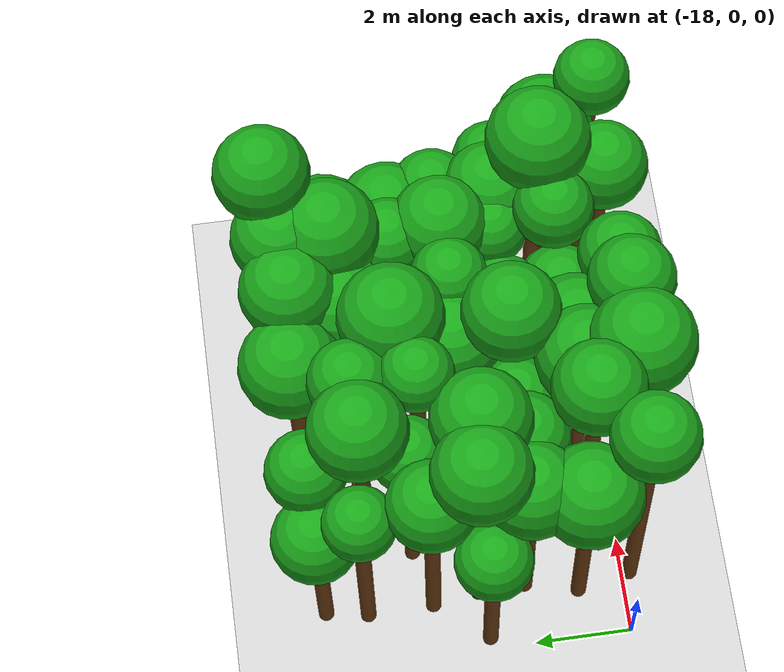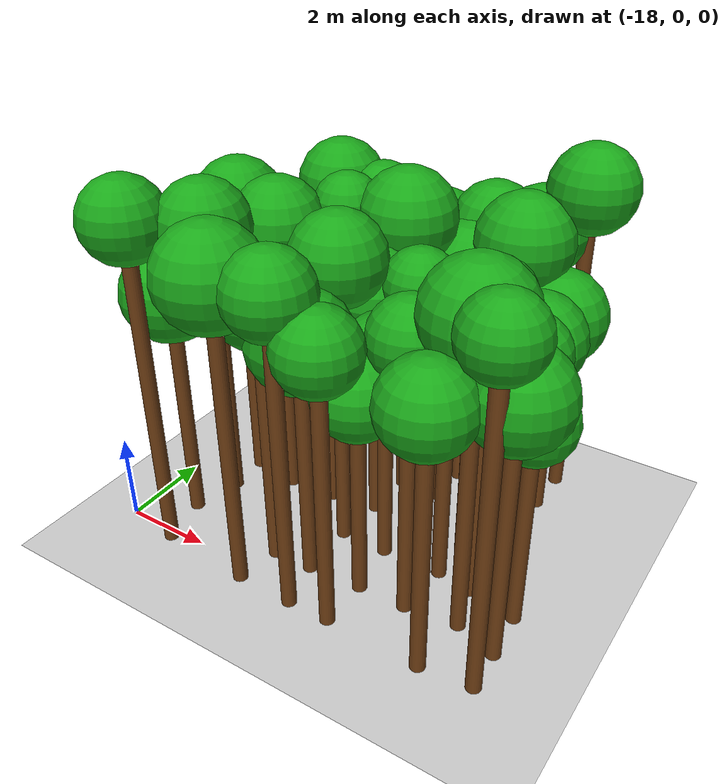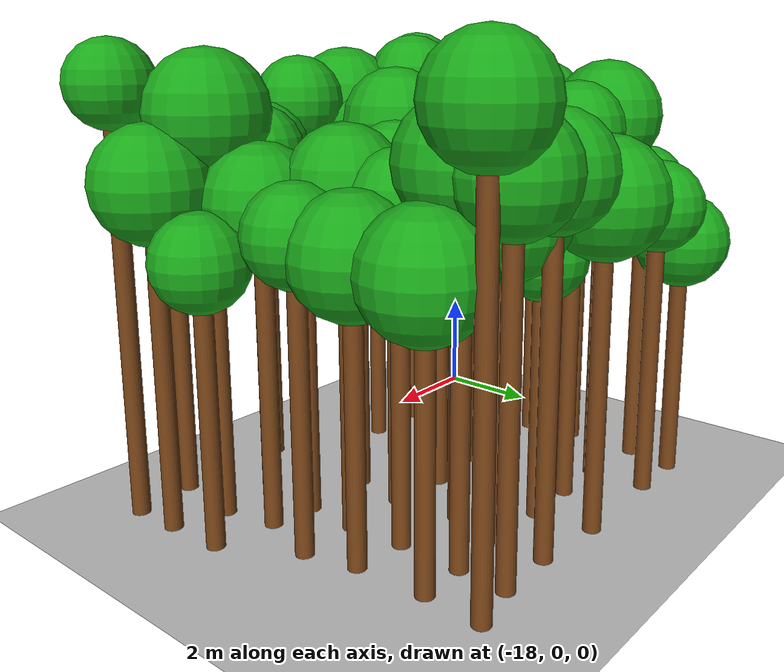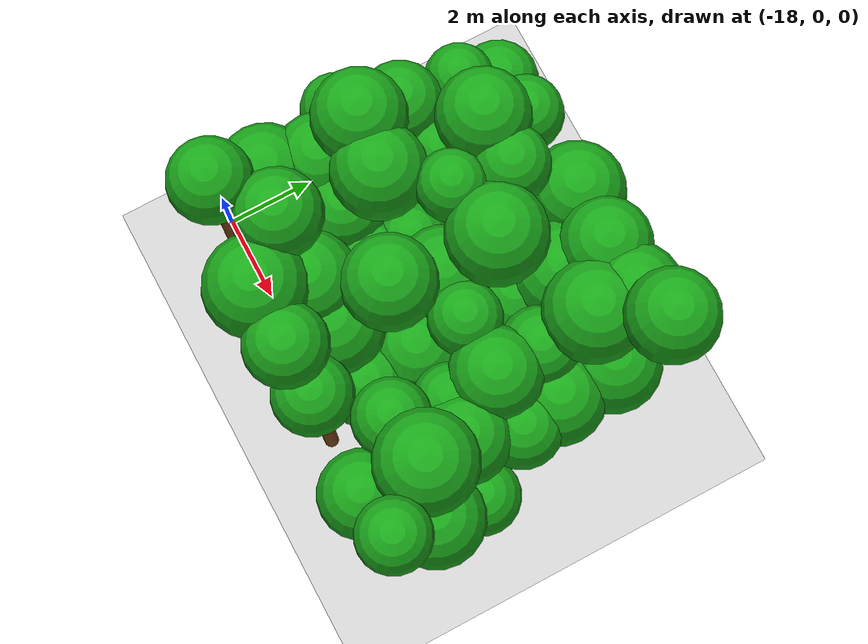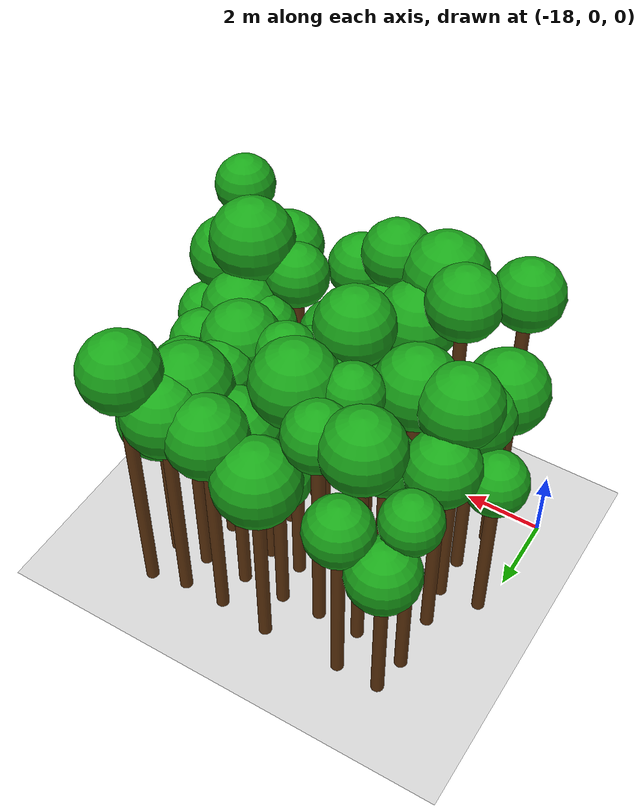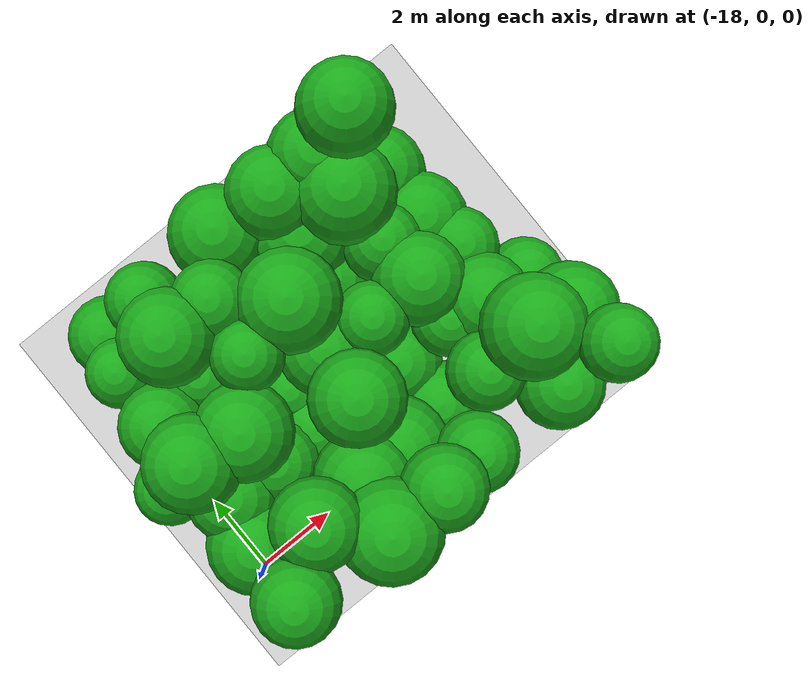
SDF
<sdf version="1.6">
 <world name="forest_world">
  <include><uri>model://sun</uri></include>
  <include><uri>model://ground_plane</uri></include>
  <model name="tree_635_trunk">
   <static>true</static>
   <pose>-17.75 2.90 2.15 0 0 0</pose>
   <link name="link">
    <collision name="collision">
     <geometry><cylinder><radius>0.16</radius><length>4.30</length></cylinder></geometry>
    </collision>
    <visual name="visual">
     <geometry><cylinder><radius>0.16</radius><length>4.30</length></cylinder></geometry>
     <material><ambient>0.35 0.20 0.05 1</ambient><diffuse>0.45 0.25 0.08 1</diffuse></material>
    </visual>
   </link>
  </model>
  <model name="tree_635_leaf">
   <static>true</static>
   <pose>-17.75 2.90 4.77 0 0 0</pose>
   <link name="link">
    <collision name="collision"><geometry><sphere><radius>0.77</radius></sphere></geometry></collision>
    <visual name="visual">
     <geometry><sphere><radius>0.77</radius></sphere></geometry>
     <material><ambient>0.05 0.45 0.05 1</ambient><diffuse>0.10 0.65 0.10 1</diffuse></material>
    </visual>
   </link>
  </model>
  <model name="tree_687_trunk">
   <static>true</static>
   <pose>-16.74 -0.16 3.50 0 0 0</pose>
   <link name="link">
    <collision name="collision">
     <geometry><cylinder><radius>0.16</radius><length>7.00</length></cylinder></geometry>
    </collision>
    <visual name="visual">
     <geometry><cylinder><radius>0.16</radius><length>7.00</length></cylinder></geometry>
     <material><ambient>0.35 0.20 0.05 1</ambient><diffuse>0.45 0.25 0.08 1</diffuse></material>
    </visual>
   </link>
  </model>
  <model name="tree_687_leaf">
   <static>true</static>
   <pose>-16.74 -0.16 7.51 0 0 0</pose>
   <link name="link">
    <collision name="collision"><geometry><sphere><radius>0.86</radius></sphere></geometry></collision>
    <visual name="visual">
     <geometry><sphere><radius>0.86</radius></sphere></geometry>
     <material><ambient>0.05 0.45 0.05 1</ambient><diffuse>0.10 0.65 0.10 1</diffuse></material>
    </visual>
   </link>
  </model>
  <model name="tree_688_trunk">
   <static>true</static>
   <pose>-16.97 0.95 2.45 0 0 0</pose>
   <link name="link">
    <collision name="collision">
     <geometry><cylinder><radius>0.16</radius><length>4.90</length></cylinder></geometry>
    </collision>
    <visual name="visual">
     <geometry><cylinder><radius>0.16</radius><length>4.90</length></cylinder></geometry>
     <material><ambient>0.35 0.20 0.05 1</ambient><diffuse>0.45 0.25 0.08 1</diffuse></material>
    </visual>
   </link>
  </model>
  <model name="tree_688_leaf">
   <static>true</static>
   <pose>-16.97 0.95 5.52 0 0 0</pose>
   <link name="link">
    <collision name="collision"><geometry><sphere><radius>1.03</radius></sphere></geometry></collision>
    <visual name="visual">
     <geometry><sphere><radius>1.03</radius></sphere></geometry>
     <material><ambient>0.05 0.45 0.05 1</ambient><diffuse>0.10 0.65 0.10 1</diffuse></material>
    </visual>
   </link>
  </model>
  <model name="tree_689_trunk">
   <static>true</static>
   <pose>-16.71 2.04 2.50 0 0 0</pose>
   <link name="link">
    <collision name="collision">
     <geometry><cylinder><radius>0.16</radius><length>4.99</length></cylinder></geometry>
    </collision>
    <visual name="visual">
     <geometry><cylinder><radius>0.16</radius><length>4.99</length></cylinder></geometry>
     <material><ambient>0.35 0.20 0.05 1</ambient><diffuse>0.45 0.25 0.08 1</diffuse></material>
    </visual>
   </link>
  </model>
  <model name="tree_689_leaf">
   <static>true</static>
   <pose>-16.71 2.04 5.57 0 0 0</pose>
   <link name="link">
    <collision name="collision"><geometry><sphere><radius>0.97</radius></sphere></geometry></collision>
    <visual name="visual">
     <geometry><sphere><radius>0.97</radius></sphere></geometry>
     <material><ambient>0.05 0.45 0.05 1</ambient><diffuse>0.10 0.65 0.10 1</diffuse></material>
    </visual>
   </link>
  </model>
  <model name="tree_690_trunk">
   <static>true</static>
   <pose>-16.75 3.01 3.12 0 0 0</pose>
   <link name="link">
    <collision name="collision">
     <geometry><cylinder><radius>0.16</radius><length>6.24</length></cylinder></geometry>
    </collision>
    <visual name="visual">
     <geometry><cylinder><radius>0.16</radius><length>6.24</length></cylinder></geometry>
     <material><ambient>0.35 0.20 0.05 1</ambient><diffuse>0.45 0.25 0.08 1</diffuse></material>
    </visual>
   </link>
  </model>
  <model name="tree_690_leaf">
   <static>true</static>
   <pose>-16.75 3.01 6.83 0 0 0</pose>
   <link name="link">
    <collision name="collision"><geometry><sphere><radius>0.98</radius></sphere></geometry></collision>
    <visual name="visual">
     <geometry><sphere><radius>0.98</radius></sphere></geometry>
     <material><ambient>0.05 0.45 0.05 1</ambient><diffuse>0.10 0.65 0.10 1</diffuse></material>
    </visual>
   </link>
  </model>
  <model name="tree_691_trunk">
   <static>true</static>
   <pose>-16.89 3.97 2.66 0 0 0</pose>
   <link name="link">
    <collision name="collision">
     <geometry><cylinder><radius>0.16</radius><length>5.31</length></cylinder></geometry>
    </collision>
    <visual name="visual">
     <geometry><cylinder><radius>0.16</radius><length>5.31</length></cylinder></geometry>
     <material><ambient>0.35 0.20 0.05 1</ambient><diffuse>0.45 0.25 0.08 1</diffuse></material>
    </visual>
   </link>
  </model>
  <model name="tree_691_leaf">
   <static>true</static>
   <pose>-16.89 3.97 5.85 0 0 0</pose>
   <link name="link">
    <collision name="collision"><geometry><sphere><radius>0.89</radius></sphere></geometry></collision>
    <visual name="visual">
     <geometry><sphere><radius>0.89</radius></sphere></geometry>
     <material><ambient>0.05 0.45 0.05 1</ambient><diffuse>0.10 0.65 0.10 1</diffuse></material>
    </visual>
   </link>
  </model>
  <model name="tree_692_trunk">
   <static>true</static>
   <pose>-16.92 5.33 2.53 0 0 0</pose>
   <link name="link">
    <collision name="collision">
     <geometry><cylinder><radius>0.16</radius><length>5.06</length></cylinder></geometry>
    </collision>
    <visual name="visual">
     <geometry><cylinder><radius>0.16</radius><length>5.06</length></cylinder></geometry>
     <material><ambient>0.35 0.20 0.05 1</ambient><diffuse>0.45 0.25 0.08 1</diffuse></material>
    </visual>
   </link>
  </model>
  <model name="tree_692_leaf">
   <static>true</static>
   <pose>-16.92 5.33 5.50 0 0 0</pose>
   <link name="link">
    <collision name="collision"><geometry><sphere><radius>0.73</radius></sphere></geometry></collision>
    <visual name="visual">
     <geometry><sphere><radius>0.73</radius></sphere></geometry>
     <material><ambient>0.05 0.45 0.05 1</ambient><diffuse>0.10 0.65 0.10 1</diffuse></material>
    </visual>
   </link>
  </model>
  <model name="tree_693_trunk">
   <static>true</static>
   <pose>-16.77 6.19 2.01 0 0 0</pose>
   <link name="link">
    <collision name="collision">
     <geometry><cylinder><radius>0.16</radius><length>4.02</length></cylinder></geometry>
    </collision>
    <visual name="visual">
     <geometry><cylinder><radius>0.16</radius><length>4.02</length></cylinder></geometry>
     <material><ambient>0.35 0.20 0.05 1</ambient><diffuse>0.45 0.25 0.08 1</diffuse></material>
    </visual>
   </link>
  </model>
  <model name="tree_693_leaf">
   <static>true</static>
   <pose>-16.77 6.19 4.54 0 0 0</pose>
   <link name="link">
    <collision name="collision"><geometry><sphere><radius>0.87</radius></sphere></geometry></collision>
    <visual name="visual">
     <geometry><sphere><radius>0.87</radius></sphere></geometry>
     <material><ambient>0.05 0.45 0.05 1</ambient><diffuse>0.10 0.65 0.10 1</diffuse></material>
    </visual>
   </link>
  </model>
  <model name="tree_743_trunk">
   <static>true</static>
   <pose>-15.59 0.68 3.42 0 0 0</pose>
   <link name="link">
    <collision name="collision">
     <geometry><cylinder><radius>0.16</radius><length>6.84</length></cylinder></geometry>
    </collision>
    <visual name="visual">
     <geometry><cylinder><radius>0.16</radius><length>6.84</length></cylinder></geometry>
     <material><ambient>0.35 0.20 0.05 1</ambient><diffuse>0.45 0.25 0.08 1</diffuse></material>
    </visual>
   </link>
  </model>
  <model name="tree_743_leaf">
   <static>true</static>
   <pose>-15.59 0.68 7.38 0 0 0</pose>
   <link name="link">
    <collision name="collision"><geometry><sphere><radius>0.91</radius></sphere></geometry></collision>
    <visual name="visual">
     <geometry><sphere><radius>0.91</radius></sphere></geometry>
     <material><ambient>0.05 0.45 0.05 1</ambient><diffuse>0.10 0.65 0.10 1</diffuse></material>
    </visual>
   </link>
  </model>
  <model name="tree_744_trunk">
   <static>true</static>
   <pose>-15.60 1.99 2.47 0 0 0</pose>
   <link name="link">
    <collision name="collision">
     <geometry><cylinder><radius>0.16</radius><length>4.93</length></cylinder></geometry>
    </collision>
    <visual name="visual">
     <geometry><cylinder><radius>0.16</radius><length>4.93</length></cylinder></geometry>
     <material><ambient>0.35 0.20 0.05 1</ambient><diffuse>0.45 0.25 0.08 1</diffuse></material>
    </visual>
   </link>
  </model>
  <model name="tree_744_leaf">
   <static>true</static>
   <pose>-15.60 1.99 5.46 0 0 0</pose>
   <link name="link">
    <collision name="collision"><geometry><sphere><radius>0.88</radius></sphere></geometry></collision>
    <visual name="visual">
     <geometry><sphere><radius>0.88</radius></sphere></geometry>
     <material><ambient>0.05 0.45 0.05 1</ambient><diffuse>0.10 0.65 0.10 1</diffuse></material>
    </visual>
   </link>
  </model>
  <model name="tree_745_trunk">
   <static>true</static>
   <pose>-15.63 2.86 3.04 0 0 0</pose>
   <link name="link">
    <collision name="collision">
     <geometry><cylinder><radius>0.16</radius><length>6.08</length></cylinder></geometry>
    </collision>
    <visual name="visual">
     <geometry><cylinder><radius>0.16</radius><length>6.08</length></cylinder></geometry>
     <material><ambient>0.35 0.20 0.05 1</ambient><diffuse>0.45 0.25 0.08 1</diffuse></material>
    </visual>
   </link>
  </model>
  <model name="tree_745_leaf">
   <static>true</static>
   <pose>-15.63 2.86 6.67 0 0 0</pose>
   <link name="link">
    <collision name="collision"><geometry><sphere><radius>0.99</radius></sphere></geometry></collision>
    <visual name="visual">
     <geometry><sphere><radius>0.99</radius></sphere></geometry>
     <material><ambient>0.05 0.45 0.05 1</ambient><diffuse>0.10 0.65 0.10 1</diffuse></material>
    </visual>
   </link>
  </model>
  <model name="tree_746_trunk">
   <static>true</static>
   <pose>-15.69 4.25 2.55 0 0 0</pose>
   <link name="link">
    <collision name="collision">
     <geometry><cylinder><radius>0.16</radius><length>5.10</length></cylinder></geometry>
    </collision>
    <visual name="visual">
     <geometry><cylinder><radius>0.16</radius><length>5.10</length></cylinder></geometry>
     <material><ambient>0.35 0.20 0.05 1</ambient><diffuse>0.45 0.25 0.08 1</diffuse></material>
    </visual>
   </link>
  </model>
  <model name="tree_746_leaf">
   <static>true</static>
   <pose>-15.69 4.25 5.55 0 0 0</pose>
   <link name="link">
    <collision name="collision"><geometry><sphere><radius>0.76</radius></sphere></geometry></collision>
    <visual name="visual">
     <geometry><sphere><radius>0.76</radius></sphere></geometry>
     <material><ambient>0.05 0.45 0.05 1</ambient><diffuse>0.10 0.65 0.10 1</diffuse></material>
    </visual>
   </link>
  </model>
  <model name="tree_747_trunk">
   <static>true</static>
   <pose>-15.61 5.16 3.13 0 0 0</pose>
   <link name="link">
    <collision name="collision">
     <geometry><cylinder><radius>0.16</radius><length>6.27</length></cylinder></geometry>
    </collision>
    <visual name="visual">
     <geometry><cylinder><radius>0.16</radius><length>6.27</length></cylinder></geometry>
     <material><ambient>0.35 0.20 0.05 1</ambient><diffuse>0.45 0.25 0.08 1</diffuse></material>
    </visual>
   </link>
  </model>
  <model name="tree_747_leaf">
   <static>true</static>
   <pose>-15.61 5.16 6.85 0 0 0</pose>
   <link name="link">
    <collision name="collision"><geometry><sphere><radius>0.97</radius></sphere></geometry></collision>
    <visual name="visual">
     <geometry><sphere><radius>0.97</radius></sphere></geometry>
     <material><ambient>0.05 0.45 0.05 1</ambient><diffuse>0.10 0.65 0.10 1</diffuse></material>
    </visual>
   </link>
  </model>
  <model name="tree_748_trunk">
   <static>true</static>
   <pose>-15.67 6.20 2.42 0 0 0</pose>
   <link name="link">
    <collision name="collision">
     <geometry><cylinder><radius>0.16</radius><length>4.84</length></cylinder></geometry>
    </collision>
    <visual name="visual">
     <geometry><cylinder><radius>0.16</radius><length>4.84</length></cylinder></geometry>
     <material><ambient>0.35 0.20 0.05 1</ambient><diffuse>0.45 0.25 0.08 1</diffuse></material>
    </visual>
   </link>
  </model>
  <model name="tree_748_leaf">
   <static>true</static>
   <pose>-15.67 6.20 5.32 0 0 0</pose>
   <link name="link">
    <collision name="collision"><geometry><sphere><radius>0.81</radius></sphere></geometry></collision>
    <visual name="visual">
     <geometry><sphere><radius>0.81</radius></sphere></geometry>
     <material><ambient>0.05 0.45 0.05 1</ambient><diffuse>0.10 0.65 0.10 1</diffuse></material>
    </visual>
   </link>
  </model>
  <model name="tree_797_trunk">
   <static>true</static>
   <pose>-14.62 -0.32 3.19 0 0 0</pose>
   <link name="link">
    <collision name="collision">
     <geometry><cylinder><radius>0.16</radius><length>6.37</length></cylinder></geometry>
    </collision>
    <visual name="visual">
     <geometry><cylinder><radius>0.16</radius><length>6.37</length></cylinder></geometry>
     <material><ambient>0.35 0.20 0.05 1</ambient><diffuse>0.45 0.25 0.08 1</diffuse></material>
    </visual>
   </link>
  </model>
  <model name="tree_797_leaf">
   <static>true</static>
   <pose>-14.62 -0.32 7.00 0 0 0</pose>
   <link name="link">
    <collision name="collision"><geometry><sphere><radius>1.05</radius></sphere></geometry></collision>
    <visual name="visual">
     <geometry><sphere><radius>1.05</radius></sphere></geometry>
     <material><ambient>0.05 0.45 0.05 1</ambient><diffuse>0.10 0.65 0.10 1</diffuse></material>
    </visual>
   </link>
  </model>
  <model name="tree_798_trunk">
   <static>true</static>
   <pose>-14.44 0.67 2.81 0 0 0</pose>
   <link name="link">
    <collision name="collision">
     <geometry><cylinder><radius>0.16</radius><length>5.62</length></cylinder></geometry>
    </collision>
    <visual name="visual">
     <geometry><cylinder><radius>0.16</radius><length>5.62</length></cylinder></geometry>
     <material><ambient>0.35 0.20 0.05 1</ambient><diffuse>0.45 0.25 0.08 1</diffuse></material>
    </visual>
   </link>
  </model>
  <model name="tree_798_leaf">
   <static>true</static>
   <pose>-14.44 0.67 6.23 0 0 0</pose>
   <link name="link">
    <collision name="collision"><geometry><sphere><radius>1.01</radius></sphere></geometry></collision>
    <visual name="visual">
     <geometry><sphere><radius>1.01</radius></sphere></geometry>
     <material><ambient>0.05 0.45 0.05 1</ambient><diffuse>0.10 0.65 0.10 1</diffuse></material>
    </visual>
   </link>
  </model>
  <model name="tree_799_trunk">
   <static>true</static>
   <pose>-14.59 2.01 2.21 0 0 0</pose>
   <link name="link">
    <collision name="collision">
     <geometry><cylinder><radius>0.16</radius><length>4.42</length></cylinder></geometry>
    </collision>
    <visual name="visual">
     <geometry><cylinder><radius>0.16</radius><length>4.42</length></cylinder></geometry>
     <material><ambient>0.35 0.20 0.05 1</ambient><diffuse>0.45 0.25 0.08 1</diffuse></material>
    </visual>
   </link>
  </model>
  <model name="tree_799_leaf">
   <static>true</static>
   <pose>-14.59 2.01 4.94 0 0 0</pose>
   <link name="link">
    <collision name="collision"><geometry><sphere><radius>0.87</radius></sphere></geometry></collision>
    <visual name="visual">
     <geometry><sphere><radius>0.87</radius></sphere></geometry>
     <material><ambient>0.05 0.45 0.05 1</ambient><diffuse>0.10 0.65 0.10 1</diffuse></material>
    </visual>
   </link>
  </model>
  <model name="tree_800_trunk">
   <static>true</static>
   <pose>-14.51 2.95 2.29 0 0 0</pose>
   <link name="link">
    <collision name="collision">
     <geometry><cylinder><radius>0.16</radius><length>4.59</length></cylinder></geometry>
    </collision>
    <visual name="visual">
     <geometry><cylinder><radius>0.16</radius><length>4.59</length></cylinder></geometry>
     <material><ambient>0.35 0.20 0.05 1</ambient><diffuse>0.45 0.25 0.08 1</diffuse></material>
    </visual>
   </link>
  </model>
  <model name="tree_800_leaf">
   <static>true</static>
   <pose>-14.51 2.95 5.04 0 0 0</pose>
   <link name="link">
    <collision name="collision"><geometry><sphere><radius>0.76</radius></sphere></geometry></collision>
    <visual name="visual">
     <geometry><sphere><radius>0.76</radius></sphere></geometry>
     <material><ambient>0.05 0.45 0.05 1</ambient><diffuse>0.10 0.65 0.10 1</diffuse></material>
    </visual>
   </link>
  </model>
  <model name="tree_801_trunk">
   <static>true</static>
   <pose>-14.65 3.94 3.22 0 0 0</pose>
   <link name="link">
    <collision name="collision">
     <geometry><cylinder><radius>0.16</radius><length>6.44</length></cylinder></geometry>
    </collision>
    <visual name="visual">
     <geometry><cylinder><radius>0.16</radius><length>6.44</length></cylinder></geometry>
     <material><ambient>0.35 0.20 0.05 1</ambient><diffuse>0.45 0.25 0.08 1</diffuse></material>
    </visual>
   </link>
  </model>
  <model name="tree_801_leaf">
   <static>true</static>
   <pose>-14.65 3.94 6.88 0 0 0</pose>
   <link name="link">
    <collision name="collision"><geometry><sphere><radius>0.73</radius></sphere></geometry></collision>
    <visual name="visual">
     <geometry><sphere><radius>0.73</radius></sphere></geometry>
     <material><ambient>0.05 0.45 0.05 1</ambient><diffuse>0.10 0.65 0.10 1</diffuse></material>
    </visual>
   </link>
  </model>
  <model name="tree_802_trunk">
   <static>true</static>
   <pose>-14.54 5.18 3.09 0 0 0</pose>
   <link name="link">
    <collision name="collision">
     <geometry><cylinder><radius>0.16</radius><length>6.18</length></cylinder></geometry>
    </collision>
    <visual name="visual">
     <geometry><cylinder><radius>0.16</radius><length>6.18</length></cylinder></geometry>
     <material><ambient>0.35 0.20 0.05 1</ambient><diffuse>0.45 0.25 0.08 1</diffuse></material>
    </visual>
   </link>
  </model>
  <model name="tree_802_leaf">
   <static>true</static>
   <pose>-14.54 5.18 6.67 0 0 0</pose>
   <link name="link">
    <collision name="collision"><geometry><sphere><radius>0.82</radius></sphere></geometry></collision>
    <visual name="visual">
     <geometry><sphere><radius>0.82</radius></sphere></geometry>
     <material><ambient>0.05 0.45 0.05 1</ambient><diffuse>0.10 0.65 0.10 1</diffuse></material>
    </visual>
   </link>
  </model>
  <model name="tree_852_trunk">
   <static>true</static>
   <pose>-13.33 -0.33 3.25 0 0 0</pose>
   <link name="link">
    <collision name="collision">
     <geometry><cylinder><radius>0.16</radius><length>6.51</length></cylinder></geometry>
    </collision>
    <visual name="visual">
     <geometry><cylinder><radius>0.16</radius><length>6.51</length></cylinder></geometry>
     <material><ambient>0.35 0.20 0.05 1</ambient><diffuse>0.45 0.25 0.08 1</diffuse></material>
    </visual>
   </link>
  </model>
  <model name="tree_852_leaf">
   <static>true</static>
   <pose>-13.33 -0.33 7.03 0 0 0</pose>
   <link name="link">
    <collision name="collision"><geometry><sphere><radius>0.86</radius></sphere></geometry></collision>
    <visual name="visual">
     <geometry><sphere><radius>0.86</radius></sphere></geometry>
     <material><ambient>0.05 0.45 0.05 1</ambient><diffuse>0.10 0.65 0.10 1</diffuse></material>
    </visual>
   </link>
  </model>
  <model name="tree_853_trunk">
   <static>true</static>
   <pose>-13.54 0.70 2.49 0 0 0</pose>
   <link name="link">
    <collision name="collision">
     <geometry><cylinder><radius>0.16</radius><length>4.98</length></cylinder></geometry>
    </collision>
    <visual name="visual">
     <geometry><cylinder><radius>0.16</radius><length>4.98</length></cylinder></geometry>
     <material><ambient>0.35 0.20 0.05 1</ambient><diffuse>0.45 0.25 0.08 1</diffuse></material>
    </visual>
   </link>
  </model>
  <model name="tree_853_leaf">
   <static>true</static>
   <pose>-13.54 0.70 5.61 0 0 0</pose>
   <link name="link">
    <collision name="collision"><geometry><sphere><radius>1.06</radius></sphere></geometry></collision>
    <visual name="visual">
     <geometry><sphere><radius>1.06</radius></sphere></geometry>
     <material><ambient>0.05 0.45 0.05 1</ambient><diffuse>0.10 0.65 0.10 1</diffuse></material>
    </visual>
   </link>
  </model>
  <model name="tree_854_trunk">
   <static>true</static>
   <pose>-13.55 1.99 3.07 0 0 0</pose>
   <link name="link">
    <collision name="collision">
     <geometry><cylinder><radius>0.16</radius><length>6.14</length></cylinder></geometry>
    </collision>
    <visual name="visual">
     <geometry><cylinder><radius>0.16</radius><length>6.14</length></cylinder></geometry>
     <material><ambient>0.35 0.20 0.05 1</ambient><diffuse>0.45 0.25 0.08 1</diffuse></material>
    </visual>
   </link>
  </model>
  <model name="tree_854_leaf">
   <static>true</static>
   <pose>-13.55 1.99 6.72 0 0 0</pose>
   <link name="link">
    <collision name="collision"><geometry><sphere><radius>0.97</radius></sphere></geometry></collision>
    <visual name="visual">
     <geometry><sphere><radius>0.97</radius></sphere></geometry>
     <material><ambient>0.05 0.45 0.05 1</ambient><diffuse>0.10 0.65 0.10 1</diffuse></material>
    </visual>
   </link>
  </model>
  <model name="tree_855_trunk">
   <static>true</static>
   <pose>-13.43 3.12 2.49 0 0 0</pose>
   <link name="link">
    <collision name="collision">
     <geometry><cylinder><radius>0.16</radius><length>4.98</length></cylinder></geometry>
    </collision>
    <visual name="visual">
     <geometry><cylinder><radius>0.16</radius><length>4.98</length></cylinder></geometry>
     <material><ambient>0.35 0.20 0.05 1</ambient><diffuse>0.45 0.25 0.08 1</diffuse></material>
    </visual>
   </link>
  </model>
  <model name="tree_855_leaf">
   <static>true</static>
   <pose>-13.43 3.12 5.58 0 0 0</pose>
   <link name="link">
    <collision name="collision"><geometry><sphere><radius>1.00</radius></sphere></geometry></collision>
    <visual name="visual">
     <geometry><sphere><radius>1.00</radius></sphere></geometry>
     <material><ambient>0.05 0.45 0.05 1</ambient><diffuse>0.10 0.65 0.10 1</diffuse></material>
    </visual>
   </link>
  </model>
  <model name="tree_856_trunk">
   <static>true</static>
   <pose>-13.39 4.26 3.10 0 0 0</pose>
   <link name="link">
    <collision name="collision">
     <geometry><cylinder><radius>0.16</radius><length>6.20</length></cylinder></geometry>
    </collision>
    <visual name="visual">
     <geometry><cylinder><radius>0.16</radius><length>6.20</length></cylinder></geometry>
     <material><ambient>0.35 0.20 0.05 1</ambient><diffuse>0.45 0.25 0.08 1</diffuse></material>
    </visual>
   </link>
  </model>
  <model name="tree_856_leaf">
   <static>true</static>
   <pose>-13.39 4.26 6.82 0 0 0</pose>
   <link name="link">
    <collision name="collision"><geometry><sphere><radius>1.04</radius></sphere></geometry></collision>
    <visual name="visual">
     <geometry><sphere><radius>1.04</radius></sphere></geometry>
     <material><ambient>0.05 0.45 0.05 1</ambient><diffuse>0.10 0.65 0.10 1</diffuse></material>
    </visual>
   </link>
  </model>
  <model name="tree_857_trunk">
   <static>true</static>
   <pose>-13.51 5.22 2.11 0 0 0</pose>
   <link name="link">
    <collision name="collision">
     <geometry><cylinder><radius>0.16</radius><length>4.22</length></cylinder></geometry>
    </collision>
    <visual name="visual">
     <geometry><cylinder><radius>0.16</radius><length>4.22</length></cylinder></geometry>
     <material><ambient>0.35 0.20 0.05 1</ambient><diffuse>0.45 0.25 0.08 1</diffuse></material>
    </visual>
   </link>
  </model>
  <model name="tree_857_leaf">
   <static>true</static>
   <pose>-13.51 5.22 4.69 0 0 0</pose>
   <link name="link">
    <collision name="collision"><geometry><sphere><radius>0.79</radius></sphere></geometry></collision>
    <visual name="visual">
     <geometry><sphere><radius>0.79</radius></sphere></geometry>
     <material><ambient>0.05 0.45 0.05 1</ambient><diffuse>0.10 0.65 0.10 1</diffuse></material>
    </visual>
   </link>
  </model>
  <model name="tree_858_trunk">
   <static>true</static>
   <pose>-13.66 6.25 2.55 0 0 0</pose>
   <link name="link">
    <collision name="collision">
     <geometry><cylinder><radius>0.16</radius><length>5.09</length></cylinder></geometry>
    </collision>
    <visual name="visual">
     <geometry><cylinder><radius>0.16</radius><length>5.09</length></cylinder></geometry>
     <material><ambient>0.35 0.20 0.05 1</ambient><diffuse>0.45 0.25 0.08 1</diffuse></material>
    </visual>
   </link>
  </model>
  <model name="tree_858_leaf">
   <static>true</static>
   <pose>-13.66 6.25 5.71 0 0 0</pose>
   <link name="link">
    <collision name="collision"><geometry><sphere><radius>1.02</radius></sphere></geometry></collision>
    <visual name="visual">
     <geometry><sphere><radius>1.02</radius></sphere></geometry>
     <material><ambient>0.05 0.45 0.05 1</ambient><diffuse>0.10 0.65 0.10 1</diffuse></material>
    </visual>
   </link>
  </model>
  <model name="tree_907_trunk">
   <static>true</static>
   <pose>-12.39 -0.31 2.86 0 0 0</pose>
   <link name="link">
    <collision name="collision">
     <geometry><cylinder><radius>0.16</radius><length>5.73</length></cylinder></geometry>
    </collision>
    <visual name="visual">
     <geometry><cylinder><radius>0.16</radius><length>5.73</length></cylinder></geometry>
     <material><ambient>0.35 0.20 0.05 1</ambient><diffuse>0.45 0.25 0.08 1</diffuse></material>
    </visual>
   </link>
  </model>
  <model name="tree_907_leaf">
   <static>true</static>
   <pose>-12.39 -0.31 6.22 0 0 0</pose>
   <link name="link">
    <collision name="collision"><geometry><sphere><radius>0.83</radius></sphere></geometry></collision>
    <visual name="visual">
     <geometry><sphere><radius>0.83</radius></sphere></geometry>
     <material><ambient>0.05 0.45 0.05 1</ambient><diffuse>0.10 0.65 0.10 1</diffuse></material>
    </visual>
   </link>
  </model>
  <model name="tree_908_trunk">
   <static>true</static>
   <pose>-12.34 0.79 2.13 0 0 0</pose>
   <link name="link">
    <collision name="collision">
     <geometry><cylinder><radius>0.16</radius><length>4.26</length></cylinder></geometry>
    </collision>
    <visual name="visual">
     <geometry><cylinder><radius>0.16</radius><length>4.26</length></cylinder></geometry>
     <material><ambient>0.35 0.20 0.05 1</ambient><diffuse>0.45 0.25 0.08 1</diffuse></material>
    </visual>
   </link>
  </model>
  <model name="tree_908_leaf">
   <static>true</static>
   <pose>-12.34 0.79 4.81 0 0 0</pose>
   <link name="link">
    <collision name="collision"><geometry><sphere><radius>0.92</radius></sphere></geometry></collision>
    <visual name="visual">
     <geometry><sphere><radius>0.92</radius></sphere></geometry>
     <material><ambient>0.05 0.45 0.05 1</ambient><diffuse>0.10 0.65 0.10 1</diffuse></material>
    </visual>
   </link>
  </model>
  <model name="tree_909_trunk">
   <static>true</static>
   <pose>-12.49 2.00 2.15 0 0 0</pose>
   <link name="link">
    <collision name="collision">
     <geometry><cylinder><radius>0.16</radius><length>4.31</length></cylinder></geometry>
    </collision>
    <visual name="visual">
     <geometry><cylinder><radius>0.16</radius><length>4.31</length></cylinder></geometry>
     <material><ambient>0.35 0.20 0.05 1</ambient><diffuse>0.45 0.25 0.08 1</diffuse></material>
    </visual>
   </link>
  </model>
  <model name="tree_909_leaf">
   <static>true</static>
   <pose>-12.49 2.00 4.89 0 0 0</pose>
   <link name="link">
    <collision name="collision"><geometry><sphere><radius>0.97</radius></sphere></geometry></collision>
    <visual name="visual">
     <geometry><sphere><radius>0.97</radius></sphere></geometry>
     <material><ambient>0.05 0.45 0.05 1</ambient><diffuse>0.10 0.65 0.10 1</diffuse></material>
    </visual>
   </link>
  </model>
  <model name="tree_910_trunk">
   <static>true</static>
   <pose>-12.35 3.01 2.81 0 0 0</pose>
   <link name="link">
    <collision name="collision">
     <geometry><cylinder><radius>0.16</radius><length>5.63</length></cylinder></geometry>
    </collision>
    <visual name="visual">
     <geometry><cylinder><radius>0.16</radius><length>5.63</length></cylinder></geometry>
     <material><ambient>0.35 0.20 0.05 1</ambient><diffuse>0.45 0.25 0.08 1</diffuse></material>
    </visual>
   </link>
  </model>
  <model name="tree_910_leaf">
   <static>true</static>
   <pose>-12.35 3.01 6.09 0 0 0</pose>
   <link name="link">
    <collision name="collision"><geometry><sphere><radius>0.76</radius></sphere></geometry></collision>
    <visual name="visual">
     <geometry><sphere><radius>0.76</radius></sphere></geometry>
     <material><ambient>0.05 0.45 0.05 1</ambient><diffuse>0.10 0.65 0.10 1</diffuse></material>
    </visual>
   </link>
  </model>
  <model name="tree_911_trunk">
   <static>true</static>
   <pose>-12.53 4.22 2.15 0 0 0</pose>
   <link name="link">
    <collision name="collision">
     <geometry><cylinder><radius>0.16</radius><length>4.30</length></cylinder></geometry>
    </collision>
    <visual name="visual">
     <geometry><cylinder><radius>0.16</radius><length>4.30</length></cylinder></geometry>
     <material><ambient>0.35 0.20 0.05 1</ambient><diffuse>0.45 0.25 0.08 1</diffuse></material>
    </visual>
   </link>
  </model>
  <model name="tree_911_leaf">
   <static>true</static>
   <pose>-12.53 4.22 4.92 0 0 0</pose>
   <link name="link">
    <collision name="collision"><geometry><sphere><radius>1.02</radius></sphere></geometry></collision>
    <visual name="visual">
     <geometry><sphere><radius>1.02</radius></sphere></geometry>
     <material><ambient>0.05 0.45 0.05 1</ambient><diffuse>0.10 0.65 0.10 1</diffuse></material>
    </visual>
   </link>
  </model>
  <model name="tree_912_trunk">
   <static>true</static>
   <pose>-12.39 5.22 2.44 0 0 0</pose>
   <link name="link">
    <collision name="collision">
     <geometry><cylinder><radius>0.16</radius><length>4.87</length></cylinder></geometry>
    </collision>
    <visual name="visual">
     <geometry><cylinder><radius>0.16</radius><length>4.87</length></cylinder></geometry>
     <material><ambient>0.35 0.20 0.05 1</ambient><diffuse>0.45 0.25 0.08 1</diffuse></material>
    </visual>
   </link>
  </model>
  <model name="tree_912_leaf">
   <static>true</static>
   <pose>-12.39 5.22 5.52 0 0 0</pose>
   <link name="link">
    <collision name="collision"><geometry><sphere><radius>1.09</radius></sphere></geometry></collision>
    <visual name="visual">
     <geometry><sphere><radius>1.09</radius></sphere></geometry>
     <material><ambient>0.05 0.45 0.05 1</ambient><diffuse>0.10 0.65 0.10 1</diffuse></material>
    </visual>
   </link>
  </model>
  <model name="tree_913_trunk">
   <static>true</static>
   <pose>-12.32 6.12 2.84 0 0 0</pose>
   <link name="link">
    <collision name="collision">
     <geometry><cylinder><radius>0.16</radius><length>5.67</length></cylinder></geometry>
    </collision>
    <visual name="visual">
     <geometry><cylinder><radius>0.16</radius><length>5.67</length></cylinder></geometry>
     <material><ambient>0.35 0.20 0.05 1</ambient><diffuse>0.45 0.25 0.08 1</diffuse></material>
    </visual>
   </link>
  </model>
  <model name="tree_913_leaf">
   <static>true</static>
   <pose>-12.32 6.12 6.25 0 0 0</pose>
   <link name="link">
    <collision name="collision"><geometry><sphere><radius>0.96</radius></sphere></geometry></collision>
    <visual name="visual">
     <geometry><sphere><radius>0.96</radius></sphere></geometry>
     <material><ambient>0.05 0.45 0.05 1</ambient><diffuse>0.10 0.65 0.10 1</diffuse></material>
    </visual>
   </link>
  </model>
  <model name="tree_963_trunk">
   <static>true</static>
   <pose>-11.27 0.82 2.90 0 0 0</pose>
   <link name="link">
    <collision name="collision">
     <geometry><cylinder><radius>0.16</radius><length>5.80</length></cylinder></geometry>
    </collision>
    <visual name="visual">
     <geometry><cylinder><radius>0.16</radius><length>5.80</length></cylinder></geometry>
     <material><ambient>0.35 0.20 0.05 1</ambient><diffuse>0.45 0.25 0.08 1</diffuse></material>
    </visual>
   </link>
  </model>
  <model name="tree_963_leaf">
   <static>true</static>
   <pose>-11.27 0.82 6.28 0 0 0</pose>
   <link name="link">
    <collision name="collision"><geometry><sphere><radius>0.80</radius></sphere></geometry></collision>
    <visual name="visual">
     <geometry><sphere><radius>0.80</radius></sphere></geometry>
     <material><ambient>0.05 0.45 0.05 1</ambient><diffuse>0.10 0.65 0.10 1</diffuse></material>
    </visual>
   </link>
  </model>
  <model name="tree_964_trunk">
   <static>true</static>
   <pose>-11.15 2.04 2.55 0 0 0</pose>
   <link name="link">
    <collision name="collision">
     <geometry><cylinder><radius>0.16</radius><length>5.09</length></cylinder></geometry>
    </collision>
    <visual name="visual">
     <geometry><cylinder><radius>0.16</radius><length>5.09</length></cylinder></geometry>
     <material><ambient>0.35 0.20 0.05 1</ambient><diffuse>0.45 0.25 0.08 1</diffuse></material>
    </visual>
   </link>
  </model>
  <model name="tree_964_leaf">
   <static>true</static>
   <pose>-11.15 2.04 5.55 0 0 0</pose>
   <link name="link">
    <collision name="collision"><geometry><sphere><radius>0.76</radius></sphere></geometry></collision>
    <visual name="visual">
     <geometry><sphere><radius>0.76</radius></sphere></geometry>
     <material><ambient>0.05 0.45 0.05 1</ambient><diffuse>0.10 0.65 0.10 1</diffuse></material>
    </visual>
   </link>
  </model>
  <model name="tree_965_trunk">
   <static>true</static>
   <pose>-11.13 3.04 2.67 0 0 0</pose>
   <link name="link">
    <collision name="collision">
     <geometry><cylinder><radius>0.16</radius><length>5.35</length></cylinder></geometry>
    </collision>
    <visual name="visual">
     <geometry><cylinder><radius>0.16</radius><length>5.35</length></cylinder></geometry>
     <material><ambient>0.35 0.20 0.05 1</ambient><diffuse>0.45 0.25 0.08 1</diffuse></material>
    </visual>
   </link>
  </model>
  <model name="tree_965_leaf">
   <static>true</static>
   <pose>-11.13 3.04 5.93 0 0 0</pose>
   <link name="link">
    <collision name="collision"><geometry><sphere><radius>0.96</radius></sphere></geometry></collision>
    <visual name="visual">
     <geometry><sphere><radius>0.96</radius></sphere></geometry>
     <material><ambient>0.05 0.45 0.05 1</ambient><diffuse>0.10 0.65 0.10 1</diffuse></material>
    </visual>
   </link>
  </model>
  <model name="tree_966_trunk">
   <static>true</static>
   <pose>-11.23 4.07 2.63 0 0 0</pose>
   <link name="link">
    <collision name="collision">
     <geometry><cylinder><radius>0.16</radius><length>5.26</length></cylinder></geometry>
    </collision>
    <visual name="visual">
     <geometry><cylinder><radius>0.16</radius><length>5.26</length></cylinder></geometry>
     <material><ambient>0.35 0.20 0.05 1</ambient><diffuse>0.45 0.25 0.08 1</diffuse></material>
    </visual>
   </link>
  </model>
  <model name="tree_966_leaf">
   <static>true</static>
   <pose>-11.23 4.07 5.75 0 0 0</pose>
   <link name="link">
    <collision name="collision"><geometry><sphere><radius>0.82</radius></sphere></geometry></collision>
    <visual name="visual">
     <geometry><sphere><radius>0.82</radius></sphere></geometry>
     <material><ambient>0.05 0.45 0.05 1</ambient><diffuse>0.10 0.65 0.10 1</diffuse></material>
    </visual>
   </link>
  </model>
  <model name="tree_967_trunk">
   <static>true</static>
   <pose>-11.24 5.25 2.89 0 0 0</pose>
   <link name="link">
    <collision name="collision">
     <geometry><cylinder><radius>0.16</radius><length>5.78</length></cylinder></geometry>
    </collision>
    <visual name="visual">
     <geometry><cylinder><radius>0.16</radius><length>5.78</length></cylinder></geometry>
     <material><ambient>0.35 0.20 0.05 1</ambient><diffuse>0.45 0.25 0.08 1</diffuse></material>
    </visual>
   </link>
  </model>
  <model name="tree_967_leaf">
   <static>true</static>
   <pose>-11.24 5.25 6.41 0 0 0</pose>
   <link name="link">
    <collision name="collision"><geometry><sphere><radius>1.05</radius></sphere></geometry></collision>
    <visual name="visual">
     <geometry><sphere><radius>1.05</radius></sphere></geometry>
     <material><ambient>0.05 0.45 0.05 1</ambient><diffuse>0.10 0.65 0.10 1</diffuse></material>
    </visual>
   </link>
  </model>
  <model name="tree_968_trunk">
   <static>true</static>
   <pose>-11.23 6.14 2.87 0 0 0</pose>
   <link name="link">
    <collision name="collision">
     <geometry><cylinder><radius>0.16</radius><length>5.75</length></cylinder></geometry>
    </collision>
    <visual name="visual">
     <geometry><cylinder><radius>0.16</radius><length>5.75</length></cylinder></geometry>
     <material><ambient>0.35 0.20 0.05 1</ambient><diffuse>0.45 0.25 0.08 1</diffuse></material>
    </visual>
   </link>
  </model>
  <model name="tree_968_leaf">
   <static>true</static>
   <pose>-11.23 6.14 6.34 0 0 0</pose>
   <link name="link">
    <collision name="collision"><geometry><sphere><radius>0.98</radius></sphere></geometry></collision>
    <visual name="visual">
     <geometry><sphere><radius>0.98</radius></sphere></geometry>
     <material><ambient>0.05 0.45 0.05 1</ambient><diffuse>0.10 0.65 0.10 1</diffuse></material>
    </visual>
   </link>
  </model>
  <model name="tree_1017_trunk">
   <static>true</static>
   <pose>-10.28 -0.34 2.68 0 0 0</pose>
   <link name="link">
    <collision name="collision">
     <geometry><cylinder><radius>0.16</radius><length>5.37</length></cylinder></geometry>
    </collision>
    <visual name="visual">
     <geometry><cylinder><radius>0.16</radius><length>5.37</length></cylinder></geometry>
     <material><ambient>0.35 0.20 0.05 1</ambient><diffuse>0.45 0.25 0.08 1</diffuse></material>
    </visual>
   </link>
  </model>
  <model name="tree_1017_leaf">
   <static>true</static>
   <pose>-10.28 -0.34 5.91 0 0 0</pose>
   <link name="link">
    <collision name="collision"><geometry><sphere><radius>0.90</radius></sphere></geometry></collision>
    <visual name="visual">
     <geometry><sphere><radius>0.90</radius></sphere></geometry>
     <material><ambient>0.05 0.45 0.05 1</ambient><diffuse>0.10 0.65 0.10 1</diffuse></material>
    </visual>
   </link>
  </model>
  <model name="tree_1018_trunk">
   <static>true</static>
   <pose>-10.12 0.97 3.19 0 0 0</pose>
   <link name="link">
    <collision name="collision">
     <geometry><cylinder><radius>0.16</radius><length>6.38</length></cylinder></geometry>
    </collision>
    <visual name="visual">
     <geometry><cylinder><radius>0.16</radius><length>6.38</length></cylinder></geometry>
     <material><ambient>0.35 0.20 0.05 1</ambient><diffuse>0.45 0.25 0.08 1</diffuse></material>
    </visual>
   </link>
  </model>
  <model name="tree_1018_leaf">
   <static>true</static>
   <pose>-10.12 0.97 7.00 0 0 0</pose>
   <link name="link">
    <collision name="collision"><geometry><sphere><radius>1.04</radius></sphere></geometry></collision>
    <visual name="visual">
     <geometry><sphere><radius>1.04</radius></sphere></geometry>
     <material><ambient>0.05 0.45 0.05 1</ambient><diffuse>0.10 0.65 0.10 1</diffuse></material>
    </visual>
   </link>
  </model>
  <model name="tree_1019_trunk">
   <static>true</static>
   <pose>-10.36 1.92 2.52 0 0 0</pose>
   <link name="link">
    <collision name="collision">
     <geometry><cylinder><radius>0.16</radius><length>5.05</length></cylinder></geometry>
    </collision>
    <visual name="visual">
     <geometry><cylinder><radius>0.16</radius><length>5.05</length></cylinder></geometry>
     <material><ambient>0.35 0.20 0.05 1</ambient><diffuse>0.45 0.25 0.08 1</diffuse></material>
    </visual>
   </link>
  </model>
  <model name="tree_1019_leaf">
   <static>true</static>
   <pose>-10.36 1.92 5.62 0 0 0</pose>
   <link name="link">
    <collision name="collision"><geometry><sphere><radius>0.97</radius></sphere></geometry></collision>
    <visual name="visual">
     <geometry><sphere><radius>0.97</radius></sphere></geometry>
     <material><ambient>0.05 0.45 0.05 1</ambient><diffuse>0.10 0.65 0.10 1</diffuse></material>
    </visual>
   </link>
  </model>
  <model name="tree_1020_trunk">
   <static>true</static>
   <pose>-10.03 3.04 2.38 0 0 0</pose>
   <link name="link">
    <collision name="collision">
     <geometry><cylinder><radius>0.16</radius><length>4.76</length></cylinder></geometry>
    </collision>
    <visual name="visual">
     <geometry><cylinder><radius>0.16</radius><length>4.76</length></cylinder></geometry>
     <material><ambient>0.35 0.20 0.05 1</ambient><diffuse>0.45 0.25 0.08 1</diffuse></material>
    </visual>
   </link>
  </model>
  <model name="tree_1020_leaf">
   <static>true</static>
   <pose>-10.03 3.04 5.26 0 0 0</pose>
   <link name="link">
    <collision name="collision"><geometry><sphere><radius>0.84</radius></sphere></geometry></collision>
    <visual name="visual">
     <geometry><sphere><radius>0.84</radius></sphere></geometry>
     <material><ambient>0.05 0.45 0.05 1</ambient><diffuse>0.10 0.65 0.10 1</diffuse></material>
    </visual>
   </link>
  </model>
  <model name="tree_1021_trunk">
   <static>true</static>
   <pose>-10.27 3.98 2.22 0 0 0</pose>
   <link name="link">
    <collision name="collision">
     <geometry><cylinder><radius>0.16</radius><length>4.43</length></cylinder></geometry>
    </collision>
    <visual name="visual">
     <geometry><cylinder><radius>0.16</radius><length>4.43</length></cylinder></geometry>
     <material><ambient>0.35 0.20 0.05 1</ambient><diffuse>0.45 0.25 0.08 1</diffuse></material>
    </visual>
   </link>
  </model>
  <model name="tree_1021_leaf">
   <static>true</static>
   <pose>-10.27 3.98 5.04 0 0 0</pose>
   <link name="link">
    <collision name="collision"><geometry><sphere><radius>1.01</radius></sphere></geometry></collision>
    <visual name="visual">
     <geometry><sphere><radius>1.01</radius></sphere></geometry>
     <material><ambient>0.05 0.45 0.05 1</ambient><diffuse>0.10 0.65 0.10 1</diffuse></material>
    </visual>
   </link>
  </model>
  <model name="tree_1022_trunk">
   <static>true</static>
   <pose>-10.36 5.28 2.17 0 0 0</pose>
   <link name="link">
    <collision name="collision">
     <geometry><cylinder><radius>0.16</radius><length>4.33</length></cylinder></geometry>
    </collision>
    <visual name="visual">
     <geometry><cylinder><radius>0.16</radius><length>4.33</length></cylinder></geometry>
     <material><ambient>0.35 0.20 0.05 1</ambient><diffuse>0.45 0.25 0.08 1</diffuse></material>
    </visual>
   </link>
  </model>
  <model name="tree_1022_leaf">
   <static>true</static>
   <pose>-10.36 5.28 4.95 0 0 0</pose>
   <link name="link">
    <collision name="collision"><geometry><sphere><radius>1.04</radius></sphere></geometry></collision>
    <visual name="visual">
     <geometry><sphere><radius>1.04</radius></sphere></geometry>
     <material><ambient>0.05 0.45 0.05 1</ambient><diffuse>0.10 0.65 0.10 1</diffuse></material>
    </visual>
   </link>
  </model>
  <model name="tree_1023_trunk">
   <static>true</static>
   <pose>-10.33 6.34 3.39 0 0 0</pose>
   <link name="link">
    <collision name="collision">
     <geometry><cylinder><radius>0.16</radius><length>6.78</length></cylinder></geometry>
    </collision>
    <visual name="visual">
     <geometry><cylinder><radius>0.16</radius><length>6.78</length></cylinder></geometry>
     <material><ambient>0.35 0.20 0.05 1</ambient><diffuse>0.45 0.25 0.08 1</diffuse></material>
    </visual>
   </link>
  </model>
  <model name="tree_1023_leaf">
   <static>true</static>
   <pose>-10.33 6.34 7.35 0 0 0</pose>
   <link name="link">
    <collision name="collision"><geometry><sphere><radius>0.95</radius></sphere></geometry></collision>
    <visual name="visual">
     <geometry><sphere><radius>0.95</radius></sphere></geometry>
     <material><ambient>0.05 0.45 0.05 1</ambient><diffuse>0.10 0.65 0.10 1</diffuse></material>
    </visual>
   </link>
  </model>
  <model name="tree_1072_trunk">
   <static>true</static>
   <pose>-9.16 -0.21 3.50 0 0 0</pose>
   <link name="link">
    <collision name="collision">
     <geometry><cylinder><radius>0.16</radius><length>6.99</length></cylinder></geometry>
    </collision>
    <visual name="visual">
     <geometry><cylinder><radius>0.16</radius><length>6.99</length></cylinder></geometry>
     <material><ambient>0.35 0.20 0.05 1</ambient><diffuse>0.45 0.25 0.08 1</diffuse></material>
    </visual>
   </link>
  </model>
  <model name="tree_1072_leaf">
   <static>true</static>
   <pose>-9.16 -0.21 7.44 0 0 0</pose>
   <link name="link">
    <collision name="collision"><geometry><sphere><radius>0.75</radius></sphere></geometry></collision>
    <visual name="visual">
     <geometry><sphere><radius>0.75</radius></sphere></geometry>
     <material><ambient>0.05 0.45 0.05 1</ambient><diffuse>0.10 0.65 0.10 1</diffuse></material>
    </visual>
   </link>
  </model>
  <model name="tree_1073_trunk">
   <static>true</static>
   <pose>-9.20 0.68 2.66 0 0 0</pose>
   <link name="link">
    <collision name="collision">
     <geometry><cylinder><radius>0.16</radius><length>5.31</length></cylinder></geometry>
    </collision>
    <visual name="visual">
     <geometry><cylinder><radius>0.16</radius><length>5.31</length></cylinder></geometry>
     <material><ambient>0.35 0.20 0.05 1</ambient><diffuse>0.45 0.25 0.08 1</diffuse></material>
    </visual>
   </link>
  </model>
  <model name="tree_1073_leaf">
   <static>true</static>
   <pose>-9.20 0.68 5.91 0 0 0</pose>
   <link name="link">
    <collision name="collision"><geometry><sphere><radius>0.99</radius></sphere></geometry></collision>
    <visual name="visual">
     <geometry><sphere><radius>0.99</radius></sphere></geometry>
     <material><ambient>0.05 0.45 0.05 1</ambient><diffuse>0.10 0.65 0.10 1</diffuse></material>
    </visual>
   </link>
  </model>
  <model name="tree_1074_trunk">
   <static>true</static>
   <pose>-9.27 1.73 2.15 0 0 0</pose>
   <link name="link">
    <collision name="collision">
     <geometry><cylinder><radius>0.16</radius><length>4.30</length></cylinder></geometry>
    </collision>
    <visual name="visual">
     <geometry><cylinder><radius>0.16</radius><length>4.30</length></cylinder></geometry>
     <material><ambient>0.35 0.20 0.05 1</ambient><diffuse>0.45 0.25 0.08 1</diffuse></material>
    </visual>
   </link>
  </model>
  <model name="tree_1074_leaf">
   <static>true</static>
   <pose>-9.27 1.73 4.79 0 0 0</pose>
   <link name="link">
    <collision name="collision"><geometry><sphere><radius>0.81</radius></sphere></geometry></collision>
    <visual name="visual">
     <geometry><sphere><radius>0.81</radius></sphere></geometry>
     <material><ambient>0.05 0.45 0.05 1</ambient><diffuse>0.10 0.65 0.10 1</diffuse></material>
    </visual>
   </link>
  </model>
 </world>
</sdf>
